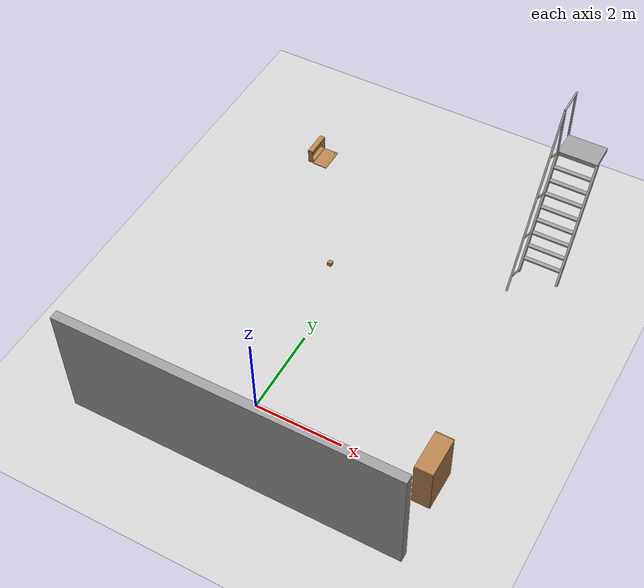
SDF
<sdf version="1.6">
 <world name="default">
  <model name="ground_plane">
   <static>1</static>
   <link name="link">
    <collision name="collision">
     <geometry><plane><normal>0 0 1</normal><size>100 100</size></plane></geometry>
     <surface><friction><ode><mu>100</mu><mu2>50</mu2></ode></friction></surface>
    </collision>
    <visual name="visual">
     <transparency>1</transparency>
     <cast_shadows>0</cast_shadows>
     <geometry><plane><normal>0 0 1</normal><size>100 100</size></plane></geometry>
     <material>
      <script><uri>file://media/materials/scripts/gazebo.material</uri><name>Gazebo/Grey</name></script>
     </material>
    </visual>
   </link>
  </model>
  <model name="bookshelf">
   <static>1</static>
   <link name="link">
    <inertial><mass>1</mass></inertial>
    <collision name="back">
     <pose>0 0.005 0.6 0 -0 0</pose>
     <geometry><box><size>0.9 0.01 1.2</size></box></geometry>
    </collision>
    <visual name="visual1">
     <pose>0 0.005 0.6 0 -0 0</pose>
     <geometry><box><size>0.9 0.01 1.2</size></box></geometry>
     <material>
      <script><uri>file://media/materials/scripts/gazebo.material</uri><name>Gazebo/Wood</name></script>
     </material>
    </visual>
    <collision name="left_side">
     <pose>0.45 -0.195 0.6 0 -0 0</pose>
     <geometry><box><size>0.02 0.4 1.2</size></box></geometry>
    </collision>
    <visual name="visual2">
     <pose>0.45 -0.195 0.6 0 -0 0</pose>
     <geometry><box><size>0.02 0.4 1.2</size></box></geometry>
     <material>
      <script><uri>file://media/materials/scripts/gazebo.material</uri><name>Gazebo/Wood</name></script>
     </material>
    </visual>
    <collision name="right_side">
     <pose>-0.45 -0.195 0.6 0 -0 0</pose>
     <geometry><box><size>0.02 0.4 1.2</size></box></geometry>
    </collision>
    <visual name="visual3">
     <pose>-0.45 -0.195 0.6 0 -0 0</pose>
     <geometry><box><size>0.02 0.4 1.2</size></box></geometry>
     <material>
      <script><uri>file://media/materials/scripts/gazebo.material</uri><name>Gazebo/Wood</name></script>
     </material>
    </visual>
    <collision name="bottom">
     <pose>0 -0.195 0.03 0 -0 0</pose>
     <geometry><box><size>0.88 0.4 0.06</size></box></geometry>
    </collision>
    <visual name="visual4">
     <pose>0 -0.195 0.03 0 -0 0</pose>
     <geometry><box><size>0.88 0.4 0.06</size></box></geometry>
     <material>
      <script><uri>file://media/materials/scripts/gazebo.material</uri><name>Gazebo/Wood</name></script>
     </material>
    </visual>
    <collision name="top">
     <pose>0 -0.195 1.19 0 -0 0</pose>
     <geometry><box><size>0.88 0.4 0.02</size></box></geometry>
    </collision>
    <visual name="visual5">
     <pose>0 -0.195 1.19 0 -0 0</pose>
     <geometry><box><size>0.88 0.4 0.02</size></box></geometry>
     <material>
      <script><uri>file://media/materials/scripts/gazebo.material</uri><name>Gazebo/Wood</name></script>
     </material>
    </visual>
    <collision name="low_shelf">
     <pose>0 -0.195 0.43 0 -0 0</pose>
     <geometry><box><size>0.88 0.4 0.02</size></box></geometry>
    </collision>
    <visual name="visual6">
     <pose>0 -0.195 0.43 0 -0 0</pose>
     <geometry><box><size>0.88 0.4 0.02</size></box></geometry>
     <material>
      <script><uri>file://media/materials/scripts/gazebo.material</uri><name>Gazebo/Wood</name></script>
     </material>
    </visual>
    <collision name="high_shelf">
     <pose>0 -0.195 0.8 0 -0 0</pose>
     <geometry><box><size>0.88 0.4 0.02</size></box></geometry>
    </collision>
    <visual name="visual7">
     <pose>0 -0.195 0.8 0 -0 0</pose>
     <geometry><box><size>0.88 0.4 0.02</size></box></geometry>
     <material>
      <script><uri>file://media/materials/scripts/gazebo.material</uri><name>Gazebo/Wood</name></script>
     </material>
    </visual>
   </link>
   <pose>4.17619 0.007525 0 0 0 -1.57581</pose>
  </model>
  <model name="grey_wall">
   <static>1</static>
   <link name="link">
    <pose>0 0 1.4 0 -0 0</pose>
    <collision name="collision"><geometry><box><size>7.5 0.2 2.8</size></box></geometry></collision>
    <visual name="visual">
     <cast_shadows>0</cast_shadows>
     <geometry><box><size>7.5 0.2 2.8</size></box></geometry>
     <material>
      <script>
       <uri>model://grey_wall/materials/scripts</uri>
       <uri>model://grey_wall/materials/textures</uri>
       <name>vrc/grey_wall</name>
      </script>
     </material>
    </visual>
   </link>
   <pose>0.466929 -1.6168 0 0 -0 0</pose>
  </model>
  <model name="wooden_case_metal_peg">
   <link name="wooden_case::base">
    <pose>0 0 0.024 0 -0 0</pose>
    <inertial>
     <pose>-0.022184 0 0.171592 0 -0 0</pose>
     <mass>3.96264</mass>
     <inertia>
      <ixx>0.213536</ixx>
      <ixy>0</ixy>
      <ixz>0.000779377</ixz>
      <iyy>0.0708943</iyy>
      <iyz>0</iyz>
      <izz>0.154604</izz>
     </inertia>
    </inertial>
    <collision name="collision_back">
     <pose>-0.053975 0 0.1778 0 -0 0</pose>
     <geometry><box><size>0.01905 0.5461 0.3175</size></box></geometry>
     <surface>
      <contact>
       <poissons_ratio>0.347</poissons_ratio>
       <elastic_modulus>8.8e+09</elastic_modulus>
       <ode><kp>100000</kp><kd>100</kd><max_vel>100</max_vel><min_depth>0.001</min_depth></ode>
      </contact>
      <friction>
       <torsional>
        <coefficient>1</coefficient>
        <use_patch_radius>0</use_patch_radius>
        <surface_radius>0.01</surface_radius>
       </torsional>
      </friction>
     </surface>
    </collision>
    <visual name="visual_back">
     <pose>-0.053975 0 0.1778 0 -0 0</pose>
     <geometry><box><size>0.01905 0.5461 0.3175</size></box></geometry>
     <material>
      <script><uri>file://media/materials/scripts/gazebo.material</uri><name>Gazebo/Wood</name></script>
     </material>
    </visual>
    <collision name="collision_bottom">
     <pose>0 0 0.009525 0 -0 0</pose>
     <geometry><box><size>0.127 0.5842 0.01905</size></box></geometry>
     <surface>
      <contact>
       <poissons_ratio>0.347</poissons_ratio>
       <elastic_modulus>8.8e+09</elastic_modulus>
       <ode><kp>100000</kp><kd>100</kd><max_vel>100</max_vel><min_depth>0.001</min_depth></ode>
      </contact>
      <friction>
       <torsional>
        <coefficient>1</coefficient>
        <use_patch_radius>0</use_patch_radius>
        <surface_radius>0.01</surface_radius>
       </torsional>
      </friction>
     </surface>
    </collision>
    <visual name="visual_bottom">
     <pose>0 0 0.009525 0 -0 0</pose>
     <geometry><box><size>0.127 0.5842 0.01905</size></box></geometry>
     <material>
      <script><uri>file://media/materials/scripts/gazebo.material</uri><name>Gazebo/Wood</name></script>
     </material>
    </visual>
    <collision name="collision_top">
     <pose>0 0 0.346075 0 -0 0</pose>
     <geometry><box><size>0.127 0.5842 0.01905</size></box></geometry>
     <surface>
      <contact>
       <poissons_ratio>0.347</poissons_ratio>
       <elastic_modulus>8.8e+09</elastic_modulus>
       <ode><kp>100000</kp><kd>100</kd><max_vel>100</max_vel><min_depth>0.001</min_depth></ode>
      </contact>
      <friction>
       <torsional>
        <coefficient>1</coefficient>
        <use_patch_radius>0</use_patch_radius>
        <surface_radius>0.01</surface_radius>
       </torsional>
      </friction>
     </surface>
    </collision>
    <visual name="visual_top">
     <pose>0 0 0.346075 0 -0 0</pose>
     <geometry><box><size>0.127 0.5842 0.01905</size></box></geometry>
     <material>
      <script><uri>file://media/materials/scripts/gazebo.material</uri><name>Gazebo/Wood</name></script>
     </material>
    </visual>
    <collision name="collision_left">
     <pose>0 -0.282575 0.1778 0 -0 0</pose>
     <geometry><box><size>0.127 0.01905 0.3175</size></box></geometry>
     <surface>
      <contact>
       <poissons_ratio>0.347</poissons_ratio>
       <elastic_modulus>8.8e+09</elastic_modulus>
       <ode><kp>100000</kp><kd>100</kd><max_vel>100</max_vel><min_depth>0.001</min_depth></ode>
      </contact>
      <friction>
       <torsional>
        <coefficient>1</coefficient>
        <use_patch_radius>0</use_patch_radius>
        <surface_radius>0.01</surface_radius>
       </torsional>
      </friction>
     </surface>
    </collision>
    <visual name="visual_left">
     <pose>0 -0.282575 0.1778 0 -0 0</pose>
     <geometry><box><size>0.127 0.01905 0.3175</size></box></geometry>
     <material>
      <script><uri>file://media/materials/scripts/gazebo.material</uri><name>Gazebo/Wood</name></script>
     </material>
    </visual>
    <collision name="collision_right">
     <pose>0 0.282575 0.1778 0 -0 0</pose>
     <geometry><box><size>0.127 0.01905 0.3175</size></box></geometry>
     <surface>
      <contact>
       <poissons_ratio>0.347</poissons_ratio>
       <elastic_modulus>8.8e+09</elastic_modulus>
       <ode><kp>100000</kp><kd>100</kd><max_vel>100</max_vel><min_depth>0.001</min_depth></ode>
      </contact>
      <friction>
       <torsional>
        <coefficient>1</coefficient>
        <use_patch_radius>0</use_patch_radius>
        <surface_radius>0.01</surface_radius>
       </torsional>
      </friction>
     </surface>
    </collision>
    <visual name="visual_right">
     <pose>0 0.282575 0.1778 0 -0 0</pose>
     <geometry><box><size>0.127 0.01905 0.3175</size></box></geometry>
     <material>
      <script><uri>file://media/materials/scripts/gazebo.material</uri><name>Gazebo/Wood</name></script>
     </material>
    </visual>
    <collision name="collision_block_left">
     <pose>0.0095 -0.2151 -0.012 0 -0 0</pose>
     <geometry><box><size>0.108 0.05 0.024</size></box></geometry>
     <surface>
      <contact>
       <poissons_ratio>0.347</poissons_ratio>
       <elastic_modulus>8.8e+09</elastic_modulus>
       <ode><kp>100000</kp><kd>100</kd><max_vel>100</max_vel><min_depth>0.001</min_depth></ode>
      </contact>
      <friction>
       <torsional>
        <coefficient>1</coefficient>
        <use_patch_radius>0</use_patch_radius>
        <surface_radius>0.01</surface_radius>
       </torsional>
      </friction>
     </surface>
    </collision>
    <visual name="visual_block_left">
     <pose>0.0095 -0.2151 -0.012 0 -0 0</pose>
     <geometry><box><size>0.108 0.05 0.024</size></box></geometry>
     <material>
      <script><uri>file://media/materials/scripts/gazebo.material</uri><name>Gazebo/Wood</name></script>
     </material>
    </visual>
    <collision name="collision_block_right">
     <pose>0.0095 0.2151 -0.012 0 -0 0</pose>
     <geometry><box><size>0.108 0.05 0.024</size></box></geometry>
     <surface>
      <contact>
       <poissons_ratio>0.347</poissons_ratio>
       <elastic_modulus>8.8e+09</elastic_modulus>
       <ode><kp>100000</kp><kd>100</kd><max_vel>100</max_vel><min_depth>0.001</min_depth></ode>
      </contact>
      <friction>
       <torsional>
        <coefficient>1</coefficient>
        <use_patch_radius>0</use_patch_radius>
        <surface_radius>0.01</surface_radius>
       </torsional>
      </friction>
     </surface>
    </collision>
    <visual name="visual_block_right">
     <pose>0.0095 0.2151 -0.012 0 -0 0</pose>
     <geometry><box><size>0.108 0.05 0.024</size></box></geometry>
     <material>
      <script><uri>file://media/materials/scripts/gazebo.material</uri><name>Gazebo/Wood</name></script>
     </material>
    </visual>
   </link>
   <link name="wooden_case::lid">
    <pose>0.243775 0 0.009525 0 -0 0</pose>
    <inertial>
     <mass>1.97874</mass>
     <inertia>
      <ixx>0.0563367</ixx>
      <ixy>0</ixy>
      <ixz>0</ixz>
      <iyy>0.020911</iyy>
      <iyz>0</iyz>
      <izz>0.0771281</izz>
     </inertia>
    </inertial>
    <collision name="collision">
     <geometry><box><size>0.3556 0.5842 0.01905</size></box></geometry>
     <surface>
      <contact>
       <poissons_ratio>0.347</poissons_ratio>
       <elastic_modulus>8.8e+09</elastic_modulus>
       <ode><kp>100000</kp><kd>100</kd><max_vel>100</max_vel><min_depth>0.001</min_depth></ode>
      </contact>
      <friction>
       <torsional>
        <coefficient>1</coefficient>
        <use_patch_radius>0</use_patch_radius>
        <surface_radius>0.01</surface_radius>
       </torsional>
      </friction>
     </surface>
    </collision>
    <visual name="visual">
     <geometry><box><size>0.3556 0.5842 0.01905</size></box></geometry>
     <material>
      <script><uri>file://media/materials/scripts/gazebo.material</uri><name>Gazebo/Wood</name></script>
     </material>
    </visual>
    <visual name="tee_nut_1">
     <pose>0.122 -0.216 0 0 -0 0</pose>
     <geometry><cylinder><radius>0.00635</radius><length>0.0192405</length></cylinder></geometry>
     <material>
      <script><uri>file://media/materials/scripts/gazebo.material</uri><name>Gazebo/Grey</name></script>
     </material>
    </visual>
    <visual name="tee_nut_2">
     <pose>0.122 -0.088 0 0 -0 0</pose>
     <geometry><cylinder><radius>0.00635</radius><length>0.0192405</length></cylinder></geometry>
     <material>
      <script><uri>file://media/materials/scripts/gazebo.material</uri><name>Gazebo/Grey</name></script>
     </material>
    </visual>
    <visual name="tee_nut_3">
     <pose>0.122 0.088 0 0 -0 0</pose>
     <geometry><cylinder><radius>0.00635</radius><length>0.0192405</length></cylinder></geometry>
     <material>
      <script><uri>file://media/materials/scripts/gazebo.material</uri><name>Gazebo/Grey</name></script>
     </material>
    </visual>
    <visual name="tee_nut_4">
     <pose>0.122 0.216 0 0 -0 0</pose>
     <geometry><cylinder><radius>0.00635</radius><length>0.0192405</length></cylinder></geometry>
     <material>
      <script><uri>file://media/materials/scripts/gazebo.material</uri><name>Gazebo/Grey</name></script>
     </material>
    </visual>
   </link>
   <joint name="wooden_case::lid_hinge" type="revolute">
    <pose>-0.1778 0 0.01905 0 -0 0</pose>
    <parent>wooden_case::base</parent>
    <child>wooden_case::lid</child>
    <axis>
     <xyz>0 1 0</xyz>
     <limit><upper>0.523599</upper><lower>-1.5708</lower></limit>
     <use_parent_model_frame>0</use_parent_model_frame>
     <dynamics><spring_reference>0</spring_reference><spring_stiffness>0</spring_stiffness></dynamics>
    </axis>
   </joint>
   <link name="peg::link">
    <pose>0.365774 0.216 0.05005 0 -0 0</pose>
    <inertial>
     <mass>0.0121</mass>
     <inertia>
      <ixx>3.90898e-06</ixx>
      <ixy>0</ixy>
      <ixz>0</ixz>
      <iyy>3.90898e-06</iyy>
      <iyz>0</iyz>
      <izz>6.58845e-08</izz>
     </inertia>
    </inertial>
    <collision name="collision">
     <geometry><cylinder><radius>0.0033</radius><length>0.062</length></cylinder></geometry>
     <surface>
      <contact>
       <poissons_ratio>0.305</poissons_ratio>
       <elastic_modulus>2e+11</elastic_modulus>
       <ode><kp>100000</kp><kd>100</kd><max_vel>100</max_vel><min_depth>0.001</min_depth></ode>
      </contact>
      <friction>
       <torsional>
        <coefficient>1</coefficient>
        <use_patch_radius>0</use_patch_radius>
        <surface_radius>0.01</surface_radius>
       </torsional>
      </friction>
     </surface>
    </collision>
    <visual name="visual">
     <geometry><cylinder><radius>0.0033</radius><length>0.062</length></cylinder></geometry>
     <material>
      <script><uri>file://media/materials/scripts/gazebo.material</uri><name>Gazebo/Grey</name></script>
     </material>
    </visual>
   </link>
   <joint name="case_peg" type="revolute">
    <child>peg::link</child>
    <parent>wooden_case::lid</parent>
    <axis>
     <xyz>0 0 1</xyz>
     <limit><upper>0</upper><lower>0</lower></limit>
     <use_parent_model_frame>0</use_parent_model_frame>
     <dynamics><spring_reference>0</spring_reference><spring_stiffness>0</spring_stiffness></dynamics>
    </axis>
   </joint>
   <pose>-2.53293 6.9862 -0.000759 0 -0.000429 0</pose>
  </model>
  <model name="wood_cube_10cm">
   <link name="link">
    <pose>0 0 0.05 0 -0 0</pose>
    <inertial>
     <mass>0.5167</mass>
     <inertia>
      <ixx>0.000861167</ixx>
      <ixy>0</ixy>
      <ixz>0</ixz>
      <iyy>0.000861167</iyy>
      <iyz>0</iyz>
      <izz>0.000861167</izz>
     </inertia>
    </inertial>
    <collision name="collision">
     <geometry><box><size>0.1 0.1 0.1</size></box></geometry>
     <surface>
      <contact>
       <poissons_ratio>0.347</poissons_ratio>
       <elastic_modulus>8.8e+09</elastic_modulus>
       <ode><kp>100000</kp><kd>100</kd><max_vel>100</max_vel><min_depth>0.001</min_depth></ode>
      </contact>
      <friction>
       <torsional>
        <coefficient>1</coefficient>
        <use_patch_radius>0</use_patch_radius>
        <surface_radius>0.01</surface_radius>
       </torsional>
      </friction>
     </surface>
    </collision>
    <visual name="visual">
     <geometry><box><size>0.1 0.1 0.1</size></box></geometry>
     <material>
      <script><uri>file://media/materials/scripts/gazebo.material</uri><name>Gazebo/Wood</name></script>
     </material>
    </visual>
   </link>
   <pose>-0.537845 4.07232 -0.000715 0 -0 0</pose>
  </model>
  <model name="ladder_60deg_1rails">
   <static>1</static>
   <link name="step0">
    <pose>0 0.15396 0.266667 0 -0 0</pose>
    <inertial>
     <mass>9.75482</mass>
     <inertia>
      <ixx>0.00957124</ixx>
      <iyy>0.65963</iyy>
      <izz>0.666842</izz>
      <ixy>0</ixy>
      <ixz>0</ixz>
      <iyz>0</iyz>
     </inertia>
    </inertial>
    <collision name="collision"><geometry><box><size>0.9 0.1016 0.0381</size></box></geometry></collision>
    <visual name="visual">
     <geometry><box><size>0.9 0.1016 0.0381</size></box></geometry>
     <material>
      <script><uri>file://media/materials/scripts/gazebo.material</uri><name>Gazebo/Grey</name></script>
     </material>
    </visual>
   </link>
   <link name="step1">
    <pose>0 0.30792 0.533333 0 -0 0</pose>
    <inertial>
     <mass>9.75482</mass>
     <inertia>
      <ixx>0.00957124</ixx>
      <iyy>0.65963</iyy>
      <izz>0.666842</izz>
      <ixy>0</ixy>
      <ixz>0</ixz>
      <iyz>0</iyz>
     </inertia>
    </inertial>
    <collision name="collision"><geometry><box><size>0.9 0.1016 0.0381</size></box></geometry></collision>
    <visual name="visual">
     <geometry><box><size>0.9 0.1016 0.0381</size></box></geometry>
     <material>
      <script><uri>file://media/materials/scripts/gazebo.material</uri><name>Gazebo/Grey</name></script>
     </material>
    </visual>
   </link>
   <link name="step2">
    <pose>0 0.46188 0.8 0 -0 0</pose>
    <inertial>
     <mass>9.75482</mass>
     <inertia>
      <ixx>0.00957124</ixx>
      <iyy>0.65963</iyy>
      <izz>0.666842</izz>
      <ixy>0</ixy>
      <ixz>0</ixz>
      <iyz>0</iyz>
     </inertia>
    </inertial>
    <collision name="collision"><geometry><box><size>0.9 0.1016 0.0381</size></box></geometry></collision>
    <visual name="visual">
     <geometry><box><size>0.9 0.1016 0.0381</size></box></geometry>
     <material>
      <script><uri>file://media/materials/scripts/gazebo.material</uri><name>Gazebo/Grey</name></script>
     </material>
    </visual>
   </link>
   <link name="step3">
    <pose>0 0.61584 1.06667 0 -0 0</pose>
    <inertial>
     <mass>9.75482</mass>
     <inertia>
      <ixx>0.00957124</ixx>
      <iyy>0.65963</iyy>
      <izz>0.666842</izz>
      <ixy>0</ixy>
      <ixz>0</ixz>
      <iyz>0</iyz>
     </inertia>
    </inertial>
    <collision name="collision"><geometry><box><size>0.9 0.1016 0.0381</size></box></geometry></collision>
    <visual name="visual">
     <geometry><box><size>0.9 0.1016 0.0381</size></box></geometry>
     <material>
      <script><uri>file://media/materials/scripts/gazebo.material</uri><name>Gazebo/Grey</name></script>
     </material>
    </visual>
   </link>
   <link name="step4">
    <pose>0 0.7698 1.33333 0 -0 0</pose>
    <inertial>
     <mass>9.75482</mass>
     <inertia>
      <ixx>0.00957124</ixx>
      <iyy>0.65963</iyy>
      <izz>0.666842</izz>
      <ixy>0</ixy>
      <ixz>0</ixz>
      <iyz>0</iyz>
     </inertia>
    </inertial>
    <collision name="collision"><geometry><box><size>0.9 0.1016 0.0381</size></box></geometry></collision>
    <visual name="visual">
     <geometry><box><size>0.9 0.1016 0.0381</size></box></geometry>
     <material>
      <script><uri>file://media/materials/scripts/gazebo.material</uri><name>Gazebo/Grey</name></script>
     </material>
    </visual>
   </link>
   <link name="step5">
    <pose>0 0.92376 1.6 0 -0 0</pose>
    <inertial>
     <mass>9.75482</mass>
     <inertia>
      <ixx>0.00957124</ixx>
      <iyy>0.65963</iyy>
      <izz>0.666842</izz>
      <ixy>0</ixy>
      <ixz>0</ixz>
      <iyz>0</iyz>
     </inertia>
    </inertial>
    <collision name="collision"><geometry><box><size>0.9 0.1016 0.0381</size></box></geometry></collision>
    <visual name="visual">
     <geometry><box><size>0.9 0.1016 0.0381</size></box></geometry>
     <material>
      <script><uri>file://media/materials/scripts/gazebo.material</uri><name>Gazebo/Grey</name></script>
     </material>
    </visual>
   </link>
   <link name="step6">
    <pose>0 1.07772 1.86667 0 -0 0</pose>
    <inertial>
     <mass>9.75482</mass>
     <inertia>
      <ixx>0.00957124</ixx>
      <iyy>0.65963</iyy>
      <izz>0.666842</izz>
      <ixy>0</ixy>
      <ixz>0</ixz>
      <iyz>0</iyz>
     </inertia>
    </inertial>
    <collision name="collision"><geometry><box><size>0.9 0.1016 0.0381</size></box></geometry></collision>
    <visual name="visual">
     <geometry><box><size>0.9 0.1016 0.0381</size></box></geometry>
     <material>
      <script><uri>file://media/materials/scripts/gazebo.material</uri><name>Gazebo/Grey</name></script>
     </material>
    </visual>
   </link>
   <link name="step7">
    <pose>0 1.23168 2.13333 0 -0 0</pose>
    <inertial>
     <mass>9.75482</mass>
     <inertia>
      <ixx>0.00957124</ixx>
      <iyy>0.65963</iyy>
      <izz>0.666842</izz>
      <ixy>0</ixy>
      <ixz>0</ixz>
      <iyz>0</iyz>
     </inertia>
    </inertial>
    <collision name="collision"><geometry><box><size>0.9 0.1016 0.0381</size></box></geometry></collision>
    <visual name="visual">
     <geometry><box><size>0.9 0.1016 0.0381</size></box></geometry>
     <material>
      <script><uri>file://media/materials/scripts/gazebo.material</uri><name>Gazebo/Grey</name></script>
     </material>
    </visual>
   </link>
   <link name="landing">
    <pose>0 1.68564 2.4 0 -0 0</pose>
    <inertial>
     <mass>57.6072</mass>
     <inertia><ixx>1.73518</ixx><iyy>3.89545</iyy><izz>5.6167</izz><ixy>0</ixy><ixz>0</ixz><iyz>0</iyz></inertia>
    </inertial>
    <collision name="collision"><geometry><box><size>0.9 0.6 0.1016</size></box></geometry></collision>
    <visual name="visual">
     <geometry><box><size>0.9 0.6 0.1016</size></box></geometry>
     <material>
      <script><uri>file://media/materials/scripts/gazebo.material</uri><name>Gazebo/Grey</name></script>
     </material>
    </visual>
   </link>
   <link name="left_side_wall">
    <pose>-0.45 0.69282 1.2 1.0472 -0 0</pose>
    <collision name="collision"><geometry><box><size>0.0508 2.85128 0.13</size></box></geometry></collision>
    <visual name="visual">
     <geometry><box><size>0.0508 2.85128 0.13</size></box></geometry>
     <material>
      <script><uri>file://media/materials/scripts/gazebo.material</uri><name>Gazebo/Grey</name></script>
     </material>
    </visual>
   </link>
   <link name="right_side_wall">
    <pose>0.45 0.69282 1.2 1.0472 -0 0</pose>
    <collision name="collision"><geometry><box><size>0.0508 2.85128 0.13</size></box></geometry></collision>
    <visual name="visual">
     <geometry><box><size>0.0508 2.85128 0.13</size></box></geometry>
     <material>
      <script><uri>file://media/materials/scripts/gazebo.material</uri><name>Gazebo/Grey</name></script>
     </material>
    </visual>
   </link>
   <link name="left_railing_long">
    <pose>-0.45 0.34282 1.80622 -0.523599 0 0</pose>
    <collision name="collision">
     <geometry><cylinder><radius>0.02413</radius><length>4.17128</length></cylinder></geometry>
    </collision>
    <visual name="visual">
     <geometry><cylinder><radius>0.02413</radius><length>4.17128</length></cylinder></geometry>
     <material>
      <script><uri>file://media/materials/scripts/gazebo.material</uri><name>Gazebo/Grey</name></script>
     </material>
    </visual>
   </link>
   <link name="left_railing_upright0">
    <pose>-0.45 -0.274963 0.15875 1.0472 -0 0</pose>
    <collision name="collision">
     <geometry><cylinder><radius>0.02413</radius><length>0.541218</length></cylinder></geometry>
    </collision>
    <visual name="visual">
     <geometry><cylinder><radius>0.02413</radius><length>0.541218</length></cylinder></geometry>
     <material>
      <script><uri>file://media/materials/scripts/gazebo.material</uri><name>Gazebo/Grey</name></script>
     </material>
    </visual>
   </link>
   <link name="left_railing_upright1">
    <pose>-0.45 0.186917 0.95875 1.0472 -0 0</pose>
    <collision name="collision">
     <geometry><cylinder><radius>0.02413</radius><length>0.541218</length></cylinder></geometry>
    </collision>
    <visual name="visual">
     <geometry><cylinder><radius>0.02413</radius><length>0.541218</length></cylinder></geometry>
     <material>
      <script><uri>file://media/materials/scripts/gazebo.material</uri><name>Gazebo/Grey</name></script>
     </material>
    </visual>
   </link>
   <link name="left_railing_upright2">
    <pose>-0.45 0.648797 1.75875 1.0472 -0 0</pose>
    <collision name="collision">
     <geometry><cylinder><radius>0.02413</radius><length>0.541218</length></cylinder></geometry>
    </collision>
    <visual name="visual">
     <geometry><cylinder><radius>0.02413</radius><length>0.541218</length></cylinder></geometry>
     <material>
      <script><uri>file://media/materials/scripts/gazebo.material</uri><name>Gazebo/Grey</name></script>
     </material>
    </visual>
   </link>
   <link name="left_railing_upright3">
    <pose>-0.45 1.11068 2.55875 1.0472 -0 0</pose>
    <collision name="collision">
     <geometry><cylinder><radius>0.02413</radius><length>0.541218</length></cylinder></geometry>
    </collision>
    <visual name="visual">
     <geometry><cylinder><radius>0.02413</radius><length>0.541218</length></cylinder></geometry>
     <material>
      <script><uri>file://media/materials/scripts/gazebo.material</uri><name>Gazebo/Grey</name></script>
     </material>
    </visual>
   </link>
   <link name="left_railing_landing_top">
    <pose>-0.45 1.68564 3.61244 1.5708 -0 0</pose>
    <collision name="collision">
     <geometry><cylinder><radius>0.02413</radius><length>0.64826</length></cylinder></geometry>
    </collision>
    <visual name="visual">
     <geometry><cylinder><radius>0.02413</radius><length>0.64826</length></cylinder></geometry>
     <material>
      <script><uri>file://media/materials/scripts/gazebo.material</uri><name>Gazebo/Grey</name></script>
     </material>
    </visual>
   </link>
   <link name="left_railing_landing_upright_0">
    <pose>-0.45 1.38564 3.00622 0 -0 0</pose>
    <collision name="collision">
     <geometry><cylinder><radius>0.02413</radius><length>1.21244</length></cylinder></geometry>
    </collision>
    <visual name="visual">
     <geometry><cylinder><radius>0.02413</radius><length>1.21244</length></cylinder></geometry>
     <material>
      <script><uri>file://media/materials/scripts/gazebo.material</uri><name>Gazebo/Grey</name></script>
     </material>
    </visual>
   </link>
   <link name="left_railing_landing_upright_1">
    <pose>-0.45 1.98564 3.00622 0 -0 0</pose>
    <collision name="collision">
     <geometry><cylinder><radius>0.02413</radius><length>1.21244</length></cylinder></geometry>
    </collision>
    <visual name="visual">
     <geometry><cylinder><radius>0.02413</radius><length>1.21244</length></cylinder></geometry>
     <material>
      <script><uri>file://media/materials/scripts/gazebo.material</uri><name>Gazebo/Grey</name></script>
     </material>
    </visual>
   </link>
   <pose>3.70089 5.9355 0.041002 0 -0 0</pose>
  </model>
 </world>
</sdf>
